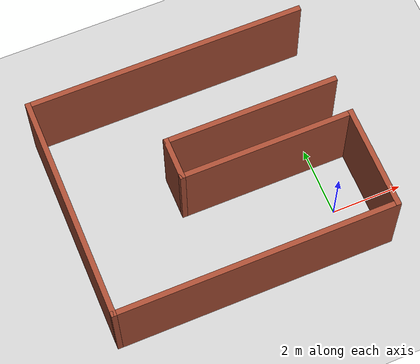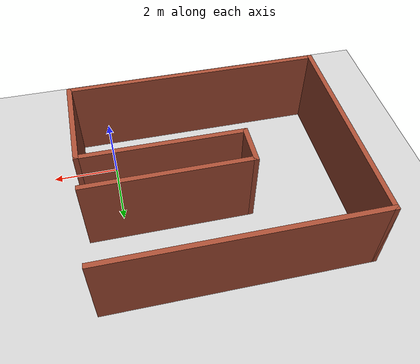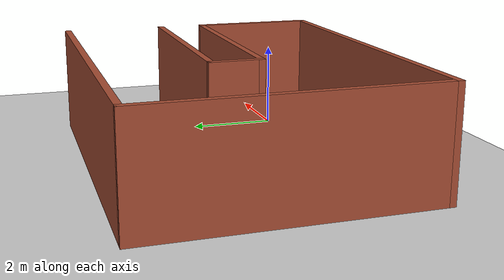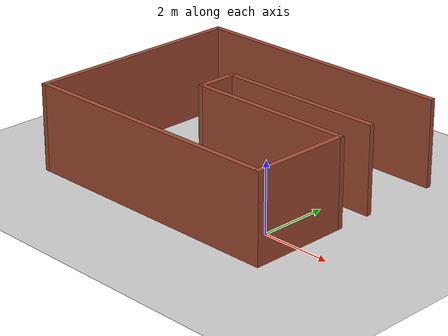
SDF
<sdf version="1.6">
 <world name="default">
  <light name="sun" type="directional">
   <pose>0 0 10 0 -0 0</pose>
   <diffuse>0.8 0.8 0.8 1</diffuse>
   <specular>0.2 0.2 0.2 1</specular>
   <attenuation>
    <range>1000</range>
    <constant>0.9</constant>
    <linear>0.01</linear>
    <quadratic>0.001</quadratic>
   </attenuation>
   <direction>-0.5 0.1 -0.9</direction>
  </light>
  <model name="ground_plane">
   <static>1</static>
   <link name="link">
    <collision name="collision">
     <geometry><plane><normal>0 0 1</normal><size>100 100</size></plane></geometry>
     <surface>
      <contact><collide_bitmask>65535</collide_bitmask></contact>
      <friction><ode><mu>100</mu><mu2>50</mu2></ode></friction>
     </surface>
    </collision>
    <visual name="visual">
     <cast_shadows>0</cast_shadows>
     <geometry><plane><normal>0 0 1</normal><size>100 100</size></plane></geometry>
     <material>
      <script><uri>file://media/materials/scripts/gazebo.material</uri><name>Gazebo/Grey</name></script>
     </material>
    </visual>
   </link>
  </model>
  <gravity>0 0 -9.8</gravity>
  <magnetic_field>6e-06 2.3e-05 -4.2e-05</magnetic_field>
  <atmosphere type="adiabatic"/>
  <physics name="default_physics" default="0" type="ode">
   <max_step_size>0.001</max_step_size>
   <real_time_factor>1</real_time_factor>
   <real_time_update_rate>1000</real_time_update_rate>
  </physics>
  <scene><ambient>0.4 0.4 0.4 1</ambient><background>0.7 0.7 0.7 1</background><shadows>1</shadows></scene>
  <audio><device>default</device></audio>
  <spherical_coordinates>
   <surface_model>EARTH_WGS84</surface_model>
   <latitude_deg>0</latitude_deg>
   <longitude_deg>0</longitude_deg>
   <elevation>0</elevation>
   <heading_deg>0</heading_deg>
  </spherical_coordinates>
  <model name="level1">
   <pose>-2.89941 1.85042 0 0 -0 0</pose>
   <link name="Wall_23">
    <collision name="Wall_23_Collision">
     <geometry><box><size>8 0.15 2.5</size></box></geometry>
     <pose>0 0 1.25 0 -0 0</pose>
    </collision>
    <visual name="Wall_23_Visual">
     <pose>0 0 1.25 0 -0 0</pose>
     <geometry><box><size>8 0.15 2.5</size></box></geometry>
     <material>
      <script><uri>file://media/materials/scripts/gazebo.material</uri><name>Gazebo/Bricks</name></script>
      <ambient>1 1 1 1</ambient>
     </material>
     <meta><layer>0</layer></meta>
    </visual>
    <pose>0 -3.175 0 0 -0 3.14159</pose>
   </link>
   <link name="Wall_24">
    <collision name="Wall_24_Collision">
     <geometry><box><size>6.5 0.15 2.5</size></box></geometry>
     <pose>0 0 1.25 0 -0 0</pose>
    </collision>
    <visual name="Wall_24_Visual">
     <pose>0 0 1.25 0 -0 0</pose>
     <geometry><box><size>6.5 0.15 2.5</size></box></geometry>
     <material>
      <script><uri>file://media/materials/scripts/gazebo.material</uri><name>Gazebo/Bricks</name></script>
      <ambient>1 1 1 1</ambient>
     </material>
     <meta><layer>0</layer></meta>
    </visual>
    <pose>-3.925 0 0 0 -0 1.5708</pose>
   </link>
   <link name="Wall_25">
    <collision name="Wall_25_Collision">
     <geometry><box><size>8 0.15 2.5</size></box></geometry>
     <pose>0 0 1.25 0 -0 0</pose>
    </collision>
    <visual name="Wall_25_Visual">
     <pose>0 0 1.25 0 -0 0</pose>
     <geometry><box><size>8 0.15 2.5</size></box></geometry>
     <material>
      <script><uri>file://media/materials/scripts/gazebo.material</uri><name>Gazebo/Bricks</name></script>
      <ambient>1 1 1 1</ambient>
     </material>
     <meta><layer>0</layer></meta>
    </visual>
    <pose>0 3.175 0 0 -0 0</pose>
   </link>
   <link name="Wall_29">
    <collision name="Wall_29_Collision">
     <geometry><box><size>3 0.15 2.5</size></box></geometry>
     <pose>0 0 1.25 0 -0 0</pose>
    </collision>
    <visual name="Wall_29_Visual">
     <pose>0 0 1.25 0 -0 0</pose>
     <geometry><box><size>3 0.15 2.5</size></box></geometry>
     <material>
      <script><uri>file://media/materials/scripts/gazebo.material</uri><name>Gazebo/Bricks</name></script>
      <ambient>1 1 1 1</ambient>
     </material>
     <meta><layer>0</layer></meta>
    </visual>
    <pose>3.925 -1.75 0 0 -0 1.5708</pose>
   </link>
   <link name="Wall_30">
    <collision name="Wall_30_Collision">
     <geometry><box><size>5 0.15 2.5</size></box></geometry>
     <pose>0 0 1.25 0 -0 0</pose>
    </collision>
    <visual name="Wall_30_Visual">
     <pose>0 0 1.25 0 -0 0</pose>
     <geometry><box><size>5 0.15 2.5</size></box></geometry>
     <material>
      <script><uri>file://media/materials/scripts/gazebo.material</uri><name>Gazebo/Bricks</name></script>
      <ambient>1 1 1 1</ambient>
     </material>
     <meta><layer>0</layer></meta>
    </visual>
    <pose>1.5 -0.325 0 0 -0 3.14159</pose>
   </link>
   <link name="Wall_31">
    <collision name="Wall_31_Collision">
     <geometry><box><size>1.25 0.15 2.5</size></box></geometry>
     <pose>0 0 1.25 0 -0 0</pose>
    </collision>
    <visual name="Wall_31_Visual">
     <pose>0 0 1.25 0 -0 0</pose>
     <geometry><box><size>1.25 0.15 2.5</size></box></geometry>
     <material>
      <script><uri>file://media/materials/scripts/gazebo.material</uri><name>Gazebo/Bricks</name></script>
      <ambient>1 1 1 1</ambient>
     </material>
     <meta><layer>0</layer></meta>
    </visual>
    <pose>-0.925 0.225 0 0 -0 1.5708</pose>
   </link>
   <link name="Wall_32">
    <collision name="Wall_32_Collision">
     <geometry><box><size>5 0.15 2.5</size></box></geometry>
     <pose>0 0 1.25 0 -0 0</pose>
    </collision>
    <visual name="Wall_32_Visual">
     <pose>0 0 1.25 0 -0 0</pose>
     <geometry><box><size>5 0.15 2.5</size></box></geometry>
     <material>
      <script><uri>file://media/materials/scripts/gazebo.material</uri><name>Gazebo/Bricks</name></script>
      <ambient>1 1 1 1</ambient>
     </material>
     <meta><layer>0</layer></meta>
    </visual>
    <pose>1.5 0.775 0 0 -0 0</pose>
   </link>
   <static>1</static>
  </model>
 </world>
</sdf>
